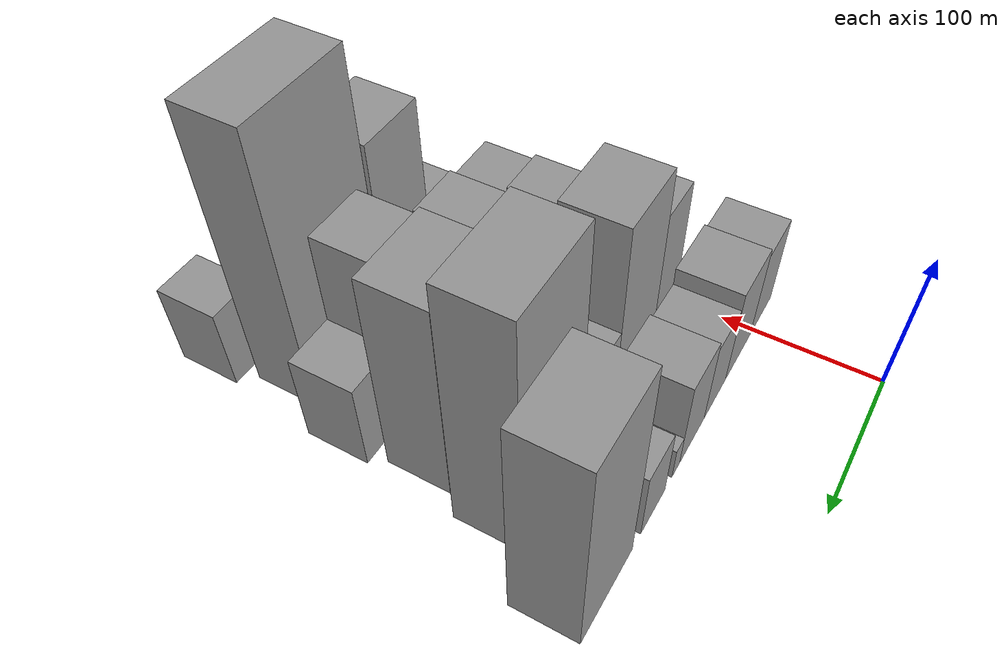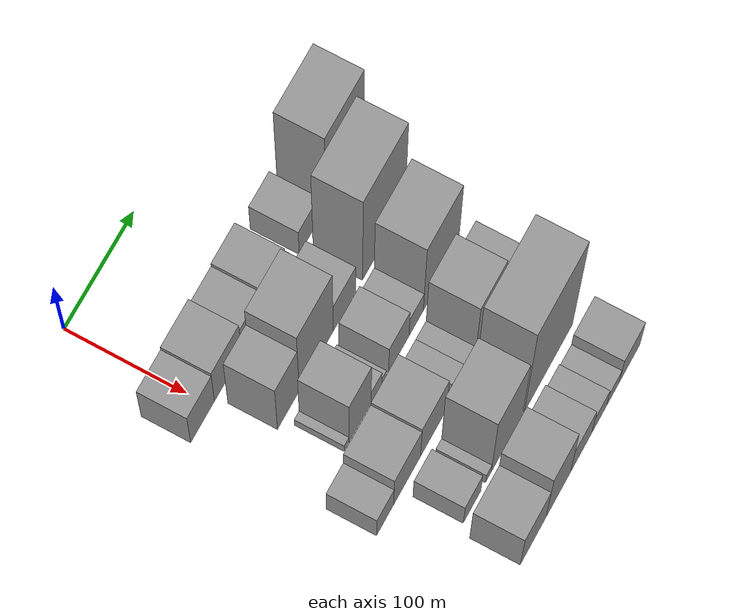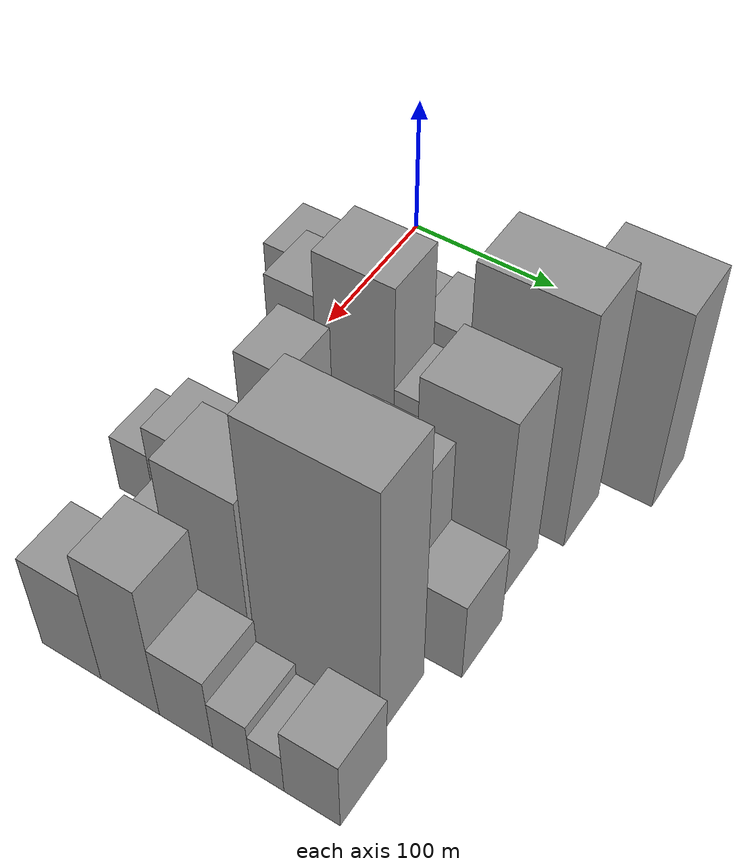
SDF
<sdf version="1.6">
 <world name="default">
  <model name="building_29">
   <static>1</static>
   <pose>100.0000 -12.7540 0 0.000000 0.000000 0.000000</pose>
   <link name="link">
    <pose>0 0 33.00 0 0 0</pose>
    <collision name="collision"><geometry><box><size>40.0000 34.4102 66.0000</size></box></geometry></collision>
    <visual name="visual">
     <cast_shadows>0</cast_shadows>
     <geometry><box><size>40.0000 34.4102 66.0000</size></box></geometry>
     <material>
      <script>
       <uri>model://grey_wall/materials/scripts</uri>
       <uri>model://grey_wall/materials/textures</uri>
       <name>vrc/grey_wall</name>
      </script>
     </material>
    </visual>
   </link>
  </model>
  <model name="building_30">
   <static>1</static>
   <pose>100.0000 24.2124 0 0.000000 0.000000 0.000000</pose>
   <link name="link">
    <pose>0 0 36.00 0 0 0</pose>
    <collision name="collision"><geometry><box><size>40.0000 39.5224 72.0000</size></box></geometry></collision>
    <visual name="visual">
     <cast_shadows>0</cast_shadows>
     <geometry><box><size>40.0000 39.5224 72.0000</size></box></geometry>
     <material>
      <script>
       <uri>model://grey_wall/materials/scripts</uri>
       <uri>model://grey_wall/materials/textures</uri>
       <name>vrc/grey_wall</name>
      </script>
     </material>
    </visual>
   </link>
  </model>
  <model name="building_31">
   <static>1</static>
   <pose>100.0000 59.7044 0 0.000000 0.000000 0.000000</pose>
   <link name="link">
    <pose>0 0 30.00 0 0 0</pose>
    <collision name="collision"><geometry><box><size>40.0000 31.4618 60.0000</size></box></geometry></collision>
    <visual name="visual">
     <cast_shadows>0</cast_shadows>
     <geometry><box><size>40.0000 31.4618 60.0000</size></box></geometry>
     <material>
      <script>
       <uri>model://grey_wall/materials/scripts</uri>
       <uri>model://grey_wall/materials/textures</uri>
       <name>vrc/grey_wall</name>
      </script>
     </material>
    </visual>
   </link>
  </model>
  <model name="building_32">
   <static>1</static>
   <pose>100.0000 92.4821 0 0.000000 0.000000 0.000000</pose>
   <link name="link">
    <pose>0 0 33.00 0 0 0</pose>
    <collision name="collision"><geometry><box><size>40.0000 34.0936 66.0000</size></box></geometry></collision>
    <visual name="visual">
     <cast_shadows>0</cast_shadows>
     <geometry><box><size>40.0000 34.0936 66.0000</size></box></geometry>
     <material>
      <script>
       <uri>model://grey_wall/materials/scripts</uri>
       <uri>model://grey_wall/materials/textures</uri>
       <name>vrc/grey_wall</name>
      </script>
     </material>
    </visual>
   </link>
  </model>
  <model name="building_33">
   <static>1</static>
   <pose>100.0000 114.5260 0 0.000000 0.000000 0.000000</pose>
   <link name="link">
    <pose>0 0 12.00 0 0 0</pose>
    <collision name="collision"><geometry><box><size>40.0000 9.9941 24.0000</size></box></geometry></collision>
    <visual name="visual">
     <cast_shadows>0</cast_shadows>
     <geometry><box><size>40.0000 9.9941 24.0000</size></box></geometry>
     <material>
      <script>
       <uri>model://grey_wall/materials/scripts</uri>
       <uri>model://grey_wall/materials/textures</uri>
       <name>vrc/grey_wall</name>
      </script>
     </material>
    </visual>
   </link>
  </model>
  <model name="building_34">
   <static>1</static>
   <pose>100.0000 143.4806 0 0.000000 0.000000 0.000000</pose>
   <link name="link">
    <pose>0 0 25.50 0 0 0</pose>
    <collision name="collision"><geometry><box><size>40.0000 29.9153 51.0000</size></box></geometry></collision>
    <visual name="visual">
     <cast_shadows>0</cast_shadows>
     <geometry><box><size>40.0000 29.9153 51.0000</size></box></geometry>
     <material>
      <script>
       <uri>model://grey_wall/materials/scripts</uri>
       <uri>model://grey_wall/materials/textures</uri>
       <name>vrc/grey_wall</name>
      </script>
     </material>
    </visual>
   </link>
  </model>
  <model name="building_35">
   <static>1</static>
   <pose>100.0000 196.8723 0 0.000000 0.000000 0.000000</pose>
   <link name="link">
    <pose>0 0 75.00 0 0 0</pose>
    <collision name="collision"><geometry><box><size>40.0000 56.8681 150.0000</size></box></geometry></collision>
    <visual name="visual">
     <cast_shadows>0</cast_shadows>
     <geometry><box><size>40.0000 56.8681 150.0000</size></box></geometry>
     <material>
      <script>
       <uri>model://grey_wall/materials/scripts</uri>
       <uri>model://grey_wall/materials/textures</uri>
       <name>vrc/grey_wall</name>
      </script>
     </material>
    </visual>
   </link>
  </model>
  <model name="building_73">
   <static>1</static>
   <pose>149.0000 23.6511 0 0.000000 0.000000 0.000000</pose>
   <link name="link">
    <pose>0 0 51.00 0 0 0</pose>
    <collision name="collision"><geometry><box><size>40.0000 31.7343 102.0000</size></box></geometry></collision>
    <visual name="visual">
     <cast_shadows>0</cast_shadows>
     <geometry><box><size>40.0000 31.7343 102.0000</size></box></geometry>
     <material>
      <script>
       <uri>model://grey_wall/materials/scripts</uri>
       <uri>model://grey_wall/materials/textures</uri>
       <name>vrc/grey_wall</name>
      </script>
     </material>
    </visual>
   </link>
  </model>
  <model name="building_74">
   <static>1</static>
   <pose>149.0000 64.6249 0 0.000000 0.000000 0.000000</pose>
   <link name="link">
    <pose>0 0 67.50 0 0 0</pose>
    <collision name="collision"><geometry><box><size>40.0000 50.2134 135.0000</size></box></geometry></collision>
    <visual name="visual">
     <cast_shadows>0</cast_shadows>
     <geometry><box><size>40.0000 50.2134 135.0000</size></box></geometry>
     <material>
      <script>
       <uri>model://grey_wall/materials/scripts</uri>
       <uri>model://grey_wall/materials/textures</uri>
       <name>vrc/grey_wall</name>
      </script>
     </material>
    </visual>
   </link>
  </model>
  <model name="building_75">
   <static>1</static>
   <pose>149.0000 106.4801 0 0.000000 0.000000 0.000000</pose>
   <link name="link">
    <pose>0 0 30.00 0 0 0</pose>
    <collision name="collision"><geometry><box><size>40.0000 33.4968 60.0000</size></box></geometry></collision>
    <visual name="visual">
     <cast_shadows>0</cast_shadows>
     <geometry><box><size>40.0000 33.4968 60.0000</size></box></geometry>
     <material>
      <script>
       <uri>model://grey_wall/materials/scripts</uri>
       <uri>model://grey_wall/materials/textures</uri>
       <name>vrc/grey_wall</name>
      </script>
     </material>
    </visual>
   </link>
  </model>
  <model name="building_76">
   <static>1</static>
   <pose>149.0000 165.2671 0 0.000000 0.000000 0.000000</pose>
   <link name="link">
    <pose>0 0 88.50 0 0 0</pose>
    <collision name="collision"><geometry><box><size>40.0000 64.0772 177.0000</size></box></geometry></collision>
    <visual name="visual">
     <cast_shadows>0</cast_shadows>
     <geometry><box><size>40.0000 64.0772 177.0000</size></box></geometry>
     <material>
      <script>
       <uri>model://grey_wall/materials/scripts</uri>
       <uri>model://grey_wall/materials/textures</uri>
       <name>vrc/grey_wall</name>
      </script>
     </material>
    </visual>
   </link>
  </model>
  <model name="building_118">
   <static>1</static>
   <pose>198.0000 19.8685 0 0.000000 0.000000 0.000000</pose>
   <link name="link">
    <pose>0 0 7.50 0 0 0</pose>
    <collision name="collision"><geometry><box><size>40.0000 7.2244 15.0000</size></box></geometry></collision>
    <visual name="visual">
     <cast_shadows>0</cast_shadows>
     <geometry><box><size>40.0000 7.2244 15.0000</size></box></geometry>
     <material>
      <script>
       <uri>model://grey_wall/materials/scripts</uri>
       <uri>model://grey_wall/materials/textures</uri>
       <name>vrc/grey_wall</name>
      </script>
     </material>
    </visual>
   </link>
  </model>
  <model name="building_119">
   <static>1</static>
   <pose>198.0000 39.6027 0 0.000000 0.000000 0.000000</pose>
   <link name="link">
    <pose>0 0 48.00 0 0 0</pose>
    <collision name="collision"><geometry><box><size>40.0000 32.2441 96.0000</size></box></geometry></collision>
    <visual name="visual">
     <cast_shadows>0</cast_shadows>
     <geometry><box><size>40.0000 32.2441 96.0000</size></box></geometry>
     <material>
      <script>
       <uri>model://grey_wall/materials/scripts</uri>
       <uri>model://grey_wall/materials/textures</uri>
       <name>vrc/grey_wall</name>
      </script>
     </material>
    </visual>
   </link>
  </model>
  <model name="building_120">
   <static>1</static>
   <pose>198.0000 63.8771 0 0.000000 0.000000 0.000000</pose>
   <link name="link">
    <pose>0 0 15.00 0 0 0</pose>
    <collision name="collision"><geometry><box><size>40.0000 16.3047 30.0000</size></box></geometry></collision>
    <visual name="visual">
     <cast_shadows>0</cast_shadows>
     <geometry><box><size>40.0000 16.3047 30.0000</size></box></geometry>
     <material>
      <script>
       <uri>model://grey_wall/materials/scripts</uri>
       <uri>model://grey_wall/materials/textures</uri>
       <name>vrc/grey_wall</name>
      </script>
     </material>
    </visual>
   </link>
  </model>
  <model name="building_121">
   <static>1</static>
   <pose>198.0000 75.4030 0 0.000000 0.000000 0.000000</pose>
   <link name="link">
    <pose>0 0 7.50 0 0 0</pose>
    <collision name="collision"><geometry><box><size>40.0000 6.7471 15.0000</size></box></geometry></collision>
    <visual name="visual">
     <cast_shadows>0</cast_shadows>
     <geometry><box><size>40.0000 6.7471 15.0000</size></box></geometry>
     <material>
      <script>
       <uri>model://grey_wall/materials/scripts</uri>
       <uri>model://grey_wall/materials/textures</uri>
       <name>vrc/grey_wall</name>
      </script>
     </material>
    </visual>
   </link>
  </model>
  <model name="building_122">
   <static>1</static>
   <pose>198.0000 97.0506 0 0.000000 0.000000 0.000000</pose>
   <link name="link">
    <pose>0 0 30.00 0 0 0</pose>
    <collision name="collision"><geometry><box><size>40.0000 30.5480 60.0000</size></box></geometry></collision>
    <visual name="visual">
     <cast_shadows>0</cast_shadows>
     <geometry><box><size>40.0000 30.5480 60.0000</size></box></geometry>
     <material>
      <script>
       <uri>model://grey_wall/materials/scripts</uri>
       <uri>model://grey_wall/materials/textures</uri>
       <name>vrc/grey_wall</name>
      </script>
     </material>
    </visual>
   </link>
  </model>
  <model name="building_123">
   <static>1</static>
   <pose>198.0000 123.0904 0 0.000000 0.000000 0.000000</pose>
   <link name="link">
    <pose>0 0 21.00 0 0 0</pose>
    <collision name="collision"><geometry><box><size>40.0000 21.5316 42.0000</size></box></geometry></collision>
    <visual name="visual">
     <cast_shadows>0</cast_shadows>
     <geometry><box><size>40.0000 21.5316 42.0000</size></box></geometry>
     <material>
      <script>
       <uri>model://grey_wall/materials/scripts</uri>
       <uri>model://grey_wall/materials/textures</uri>
       <name>vrc/grey_wall</name>
      </script>
     </material>
    </visual>
   </link>
  </model>
  <model name="building_124">
   <static>1</static>
   <pose>198.0000 160.0146 0 0.000000 0.000000 0.000000</pose>
   <link name="link">
    <pose>0 0 72.00 0 0 0</pose>
    <collision name="collision"><geometry><box><size>40.0000 52.3167 144.0000</size></box></geometry></collision>
    <visual name="visual">
     <cast_shadows>0</cast_shadows>
     <geometry><box><size>40.0000 52.3167 144.0000</size></box></geometry>
     <material>
      <script>
       <uri>model://grey_wall/materials/scripts</uri>
       <uri>model://grey_wall/materials/textures</uri>
       <name>vrc/grey_wall</name>
      </script>
     </material>
    </visual>
   </link>
  </model>
  <model name="building_165">
   <static>1</static>
   <pose>247.0000 -13.7439 0 0.000000 0.000000 0.000000</pose>
   <link name="link">
    <pose>0 0 22.50 0 0 0</pose>
    <collision name="collision"><geometry><box><size>40.0000 25.0055 45.0000</size></box></geometry></collision>
    <visual name="visual">
     <cast_shadows>0</cast_shadows>
     <geometry><box><size>40.0000 25.0055 45.0000</size></box></geometry>
     <material>
      <script>
       <uri>model://grey_wall/materials/scripts</uri>
       <uri>model://grey_wall/materials/textures</uri>
       <name>vrc/grey_wall</name>
      </script>
     </material>
    </visual>
   </link>
  </model>
  <model name="building_166">
   <static>1</static>
   <pose>247.0000 18.6204 0 0.000000 0.000000 0.000000</pose>
   <link name="link">
    <pose>0 0 34.50 0 0 0</pose>
    <collision name="collision"><geometry><box><size>40.0000 39.7230 69.0000</size></box></geometry></collision>
    <visual name="visual">
     <cast_shadows>0</cast_shadows>
     <geometry><box><size>40.0000 39.7230 69.0000</size></box></geometry>
     <material>
      <script>
       <uri>model://grey_wall/materials/scripts</uri>
       <uri>model://grey_wall/materials/textures</uri>
       <name>vrc/grey_wall</name>
      </script>
     </material>
    </visual>
   </link>
  </model>
  <model name="building_167">
   <static>1</static>
   <pose>247.0000 58.2097 0 0.000000 0.000000 0.000000</pose>
   <link name="link">
    <pose>0 0 37.50 0 0 0</pose>
    <collision name="collision"><geometry><box><size>40.0000 39.4558 75.0000</size></box></geometry></collision>
    <visual name="visual">
     <cast_shadows>0</cast_shadows>
     <geometry><box><size>40.0000 39.4558 75.0000</size></box></geometry>
     <material>
      <script>
       <uri>model://grey_wall/materials/scripts</uri>
       <uri>model://grey_wall/materials/textures</uri>
       <name>vrc/grey_wall</name>
      </script>
     </material>
    </visual>
   </link>
  </model>
  <model name="building_168">
   <static>1</static>
   <pose>247.0000 96.4677 0 0.000000 0.000000 0.000000</pose>
   <link name="link">
    <pose>0 0 15.00 0 0 0</pose>
    <collision name="collision"><geometry><box><size>40.0000 17.0602 30.0000</size></box></geometry></collision>
    <visual name="visual">
     <cast_shadows>0</cast_shadows>
     <geometry><box><size>40.0000 17.0602 30.0000</size></box></geometry>
     <material>
      <script>
       <uri>model://grey_wall/materials/scripts</uri>
       <uri>model://grey_wall/materials/textures</uri>
       <name>vrc/grey_wall</name>
      </script>
     </material>
    </visual>
   </link>
  </model>
  <model name="building_169">
   <static>1</static>
   <pose>247.0000 112.6482 0 0.000000 0.000000 0.000000</pose>
   <link name="link">
    <pose>0 0 15.00 0 0 0</pose>
    <collision name="collision"><geometry><box><size>40.0000 15.3010 30.0000</size></box></geometry></collision>
    <visual name="visual">
     <cast_shadows>0</cast_shadows>
     <geometry><box><size>40.0000 15.3010 30.0000</size></box></geometry>
     <material>
      <script>
       <uri>model://grey_wall/materials/scripts</uri>
       <uri>model://grey_wall/materials/textures</uri>
       <name>vrc/grey_wall</name>
      </script>
     </material>
    </visual>
   </link>
  </model>
  <model name="building_170">
   <static>1</static>
   <pose>247.0000 139.9405 0 0.000000 0.000000 0.000000</pose>
   <link name="link">
    <pose>0 0 61.50 0 0 0</pose>
    <collision name="collision"><geometry><box><size>40.0000 39.2836 123.0000</size></box></geometry></collision>
    <visual name="visual">
     <cast_shadows>0</cast_shadows>
     <geometry><box><size>40.0000 39.2836 123.0000</size></box></geometry>
     <material>
      <script>
       <uri>model://grey_wall/materials/scripts</uri>
       <uri>model://grey_wall/materials/textures</uri>
       <name>vrc/grey_wall</name>
      </script>
     </material>
    </visual>
   </link>
  </model>
  <model name="building_171">
   <static>1</static>
   <pose>247.0000 176.0166 0 0.000000 0.000000 0.000000</pose>
   <link name="link">
    <pose>0 0 31.50 0 0 0</pose>
    <collision name="collision"><geometry><box><size>40.0000 32.8686 63.0000</size></box></geometry></collision>
    <visual name="visual">
     <cast_shadows>0</cast_shadows>
     <geometry><box><size>40.0000 32.8686 63.0000</size></box></geometry>
     <material>
      <script>
       <uri>model://grey_wall/materials/scripts</uri>
       <uri>model://grey_wall/materials/textures</uri>
       <name>vrc/grey_wall</name>
      </script>
     </material>
    </visual>
   </link>
  </model>
  <model name="building_215">
   <static>1</static>
   <pose>296.0000 23.7324 0 0.000000 0.000000 0.000000</pose>
   <link name="link">
    <pose>0 0 22.50 0 0 0</pose>
    <collision name="collision"><geometry><box><size>40.0000 26.1414 45.0000</size></box></geometry></collision>
    <visual name="visual">
     <cast_shadows>0</cast_shadows>
     <geometry><box><size>40.0000 26.1414 45.0000</size></box></geometry>
     <material>
      <script>
       <uri>model://grey_wall/materials/scripts</uri>
       <uri>model://grey_wall/materials/textures</uri>
       <name>vrc/grey_wall</name>
      </script>
     </material>
    </visual>
   </link>
  </model>
  <model name="building_216">
   <static>1</static>
   <pose>296.0000 48.0554 0 0.000000 0.000000 0.000000</pose>
   <link name="link">
    <pose>0 0 10.50 0 0 0</pose>
    <collision name="collision"><geometry><box><size>40.0000 8.5046 21.0000</size></box></geometry></collision>
    <visual name="visual">
     <cast_shadows>0</cast_shadows>
     <geometry><box><size>40.0000 8.5046 21.0000</size></box></geometry>
     <material>
      <script>
       <uri>model://grey_wall/materials/scripts</uri>
       <uri>model://grey_wall/materials/textures</uri>
       <name>vrc/grey_wall</name>
      </script>
     </material>
    </visual>
   </link>
  </model>
  <model name="building_217">
   <static>1</static>
   <pose>296.0000 75.7813 0 0.000000 0.000000 0.000000</pose>
   <link name="link">
    <pose>0 0 66.00 0 0 0</pose>
    <collision name="collision"><geometry><box><size>40.0000 46.9473 132.0000</size></box></geometry></collision>
    <visual name="visual">
     <cast_shadows>0</cast_shadows>
     <geometry><box><size>40.0000 46.9473 132.0000</size></box></geometry>
     <material>
      <script>
       <uri>model://grey_wall/materials/scripts</uri>
       <uri>model://grey_wall/materials/textures</uri>
       <name>vrc/grey_wall</name>
      </script>
     </material>
    </visual>
   </link>
  </model>
  <model name="building_218">
   <static>1</static>
   <pose>296.0000 138.9199 0 0.000000 0.000000 0.000000</pose>
   <link name="link">
    <pose>0 0 97.50 0 0 0</pose>
    <collision name="collision"><geometry><box><size>40.0000 73.3298 195.0000</size></box></geometry></collision>
    <visual name="visual">
     <cast_shadows>0</cast_shadows>
     <geometry><box><size>40.0000 73.3298 195.0000</size></box></geometry>
     <material>
      <script>
       <uri>model://grey_wall/materials/scripts</uri>
       <uri>model://grey_wall/materials/textures</uri>
       <name>vrc/grey_wall</name>
      </script>
     </material>
    </visual>
   </link>
  </model>
  <model name="building_261">
   <static>1</static>
   <pose>345.0000 22.5791 0 0.000000 0.000000 0.000000</pose>
   <link name="link">
    <pose>0 0 37.50 0 0 0</pose>
    <collision name="collision"><geometry><box><size>40.0000 38.3768 75.0000</size></box></geometry></collision>
    <visual name="visual">
     <cast_shadows>0</cast_shadows>
     <geometry><box><size>40.0000 38.3768 75.0000</size></box></geometry>
     <material>
      <script>
       <uri>model://grey_wall/materials/scripts</uri>
       <uri>model://grey_wall/materials/textures</uri>
       <name>vrc/grey_wall</name>
      </script>
     </material>
    </visual>
   </link>
  </model>
  <model name="building_262">
   <static>1</static>
   <pose>345.0000 60.1915 0 0.000000 0.000000 0.000000</pose>
   <link name="link">
    <pose>0 0 54.00 0 0 0</pose>
    <collision name="collision"><geometry><box><size>40.0000 36.8479 108.0000</size></box></geometry></collision>
    <visual name="visual">
     <cast_shadows>0</cast_shadows>
     <geometry><box><size>40.0000 36.8479 108.0000</size></box></geometry>
     <material>
      <script>
       <uri>model://grey_wall/materials/scripts</uri>
       <uri>model://grey_wall/materials/textures</uri>
       <name>vrc/grey_wall</name>
      </script>
     </material>
    </visual>
   </link>
  </model>
  <model name="building_263">
   <static>1</static>
   <pose>345.0000 94.8924 0 0.000000 0.000000 0.000000</pose>
   <link name="link">
    <pose>0 0 30.00 0 0 0</pose>
    <collision name="collision"><geometry><box><size>40.0000 32.5540 60.0000</size></box></geometry></collision>
    <visual name="visual">
     <cast_shadows>0</cast_shadows>
     <geometry><box><size>40.0000 32.5540 60.0000</size></box></geometry>
     <material>
      <script>
       <uri>model://grey_wall/materials/scripts</uri>
       <uri>model://grey_wall/materials/textures</uri>
       <name>vrc/grey_wall</name>
      </script>
     </material>
    </visual>
   </link>
  </model>
  <model name="building_264">
   <static>1</static>
   <pose>345.0000 122.4862 0 0.000000 0.000000 0.000000</pose>
   <link name="link">
    <pose>0 0 21.00 0 0 0</pose>
    <collision name="collision"><geometry><box><size>40.0000 22.6336 42.0000</size></box></geometry></collision>
    <visual name="visual">
     <cast_shadows>0</cast_shadows>
     <geometry><box><size>40.0000 22.6336 42.0000</size></box></geometry>
     <material>
      <script>
       <uri>model://grey_wall/materials/scripts</uri>
       <uri>model://grey_wall/materials/textures</uri>
       <name>vrc/grey_wall</name>
      </script>
     </material>
    </visual>
   </link>
  </model>
  <model name="building_265">
   <static>1</static>
   <pose>345.0000 143.4636 0 0.000000 0.000000 0.000000</pose>
   <link name="link">
    <pose>0 0 16.50 0 0 0</pose>
    <collision name="collision"><geometry><box><size>40.0000 19.3211 33.0000</size></box></geometry></collision>
    <visual name="visual">
     <cast_shadows>0</cast_shadows>
     <geometry><box><size>40.0000 19.3211 33.0000</size></box></geometry>
     <material>
      <script>
       <uri>model://grey_wall/materials/scripts</uri>
       <uri>model://grey_wall/materials/textures</uri>
       <name>vrc/grey_wall</name>
      </script>
     </material>
    </visual>
   </link>
  </model>
  <model name="building_266">
   <static>1</static>
   <pose>345.0000 169.1005 0 0.000000 0.000000 0.000000</pose>
   <link name="link">
    <pose>0 0 28.50 0 0 0</pose>
    <collision name="collision"><geometry><box><size>40.0000 31.9527 57.0000</size></box></geometry></collision>
    <visual name="visual">
     <cast_shadows>0</cast_shadows>
     <geometry><box><size>40.0000 31.9527 57.0000</size></box></geometry>
     <material>
      <script>
       <uri>model://grey_wall/materials/scripts</uri>
       <uri>model://grey_wall/materials/textures</uri>
       <name>vrc/grey_wall</name>
      </script>
     </material>
    </visual>
   </link>
  </model>
 </world>
</sdf>
